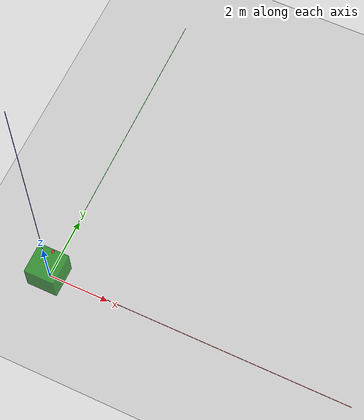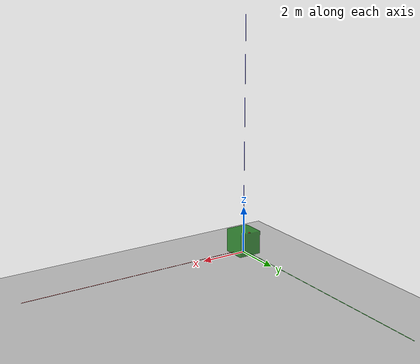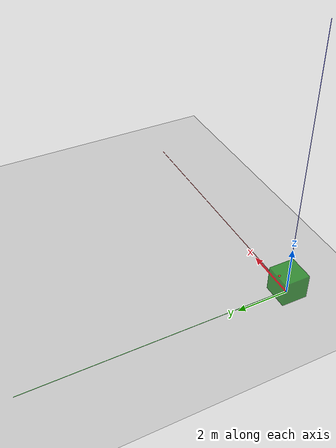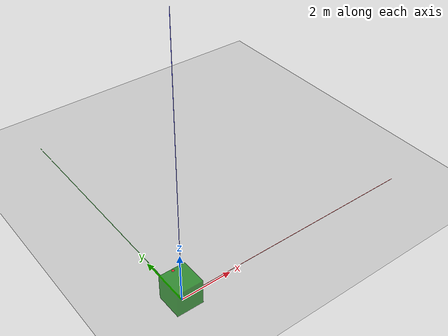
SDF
<?xml version="1.0" ?>
<sdf version="1.9">
  <world name="test_anemometer">
    <physics name="1ms" type="ignored">
      <max_step_size>0.001</max_step_size>
      <real_time_factor>1.0</real_time_factor>
    </physics>

    <plugin filename="gz-sim-physics-system"
        name="gz::sim::systems::Physics">
    </plugin>
    <plugin filename="gz-sim-sensors-system"
        name="gz::sim::systems::Sensors">
      <render_engine>ogre2</render_engine>
      <background_color>0.8 0.8 0.8</background_color>
    </plugin>
    <plugin filename="gz-sim-scene-broadcaster-system"
        name="gz::sim::systems::SceneBroadcaster">
    </plugin>
    <plugin filename="gz-sim-user-commands-system"
        name="gz::sim::systems::UserCommands">
    </plugin>
    <plugin filename="asv_sim2-anemometer-system"
      name="gz::sim::systems::Anemometer">
    </plugin>
    <plugin filename="gz-sim-imu-system"
        name="gz::sim::systems::Imu">
    </plugin>
    <plugin filename="gz-sim-navsat-system"
      name="gz::sim::systems::NavSat">
    </plugin>

    <scene>
      <ambient>1.0 1.0 1.0</ambient>
      <background>0.8 0.8 0.8</background>
      <sky></sky>
    </scene>

    <spherical_coordinates>
      <latitude_deg>-35.363333333</latitude_deg>
      <longitude_deg>149.165222222</longitude_deg>
      <elevation>584</elevation>
      <heading_deg>0</heading_deg>
      <surface_model>EARTH_WGS84</surface_model>
    </spherical_coordinates>

    <light type="directional" name="sun">
      <cast_shadows>true</cast_shadows>
      <pose>0 0 10 0 0 0</pose>
      <diffuse>0.8 0.8 0.8 1</diffuse>
      <specular>0.6 0.6 0.6 1</specular>
      <direction>-0.5 0.1 -0.9</direction>
    </light>

    <!-- Wind directed from the north at 5 m/s -->
    <wind>
      <linear_velocity>0 -5 0</linear_velocity>
    </wind>

    <model name="axes">
      <static>1</static>
      <link name="link">
        <visual name="r">
          <cast_shadows>0</cast_shadows>
          <pose>5 0 0.1 0 0 0</pose>
          <geometry>
            <box>
              <size>10 0.01 0.01</size>
            </box>
          </geometry>
          <material>
            <ambient>1 0 0 0.8</ambient>
            <diffuse>1 0 0 0.8</diffuse>
            <emissive>1 0 0 0.8</emissive>
            <specular>0.5 0.5 0.5 0.8</specular>
          </material>
        </visual>
        <visual name="g">
          <cast_shadows>0</cast_shadows>
          <pose>0 5 0.1 0 0 0</pose>
          <geometry>
            <box>
              <size>0.01 10 0.01</size>
            </box>
          </geometry>
          <material>
            <ambient>0 1 0 0.8</ambient>
            <diffuse>0 1 0 0.8</diffuse>
            <emissive>0 1 0 0.8</emissive>
            <specular>0.5 0.5 0.5 0.8</specular>
          </material>
        </visual>
        <visual name="b">
          <cast_shadows>0</cast_shadows>
          <pose>0 0 5.1 0 0 0</pose>
          <geometry>
            <box>
              <size>0.01 0.01 10</size>
            </box>
          </geometry>
          <material>
            <ambient>0 0 1 0.8</ambient>
            <diffuse>0 0 1 0.8</diffuse>
            <emissive>0 0 1 0.8</emissive>
            <specular>0.5 0.5 0.5 0.8</specular>
          </material>
        </visual>
        <sensor name="navsat_sensor" type="navsat">
          <always_on>1</always_on>
          <update_rate>1</update_rate>
        </sensor>
      </link>
    </model>

    <model name="ground_plane">
      <static>true</static>
      <link name="link">
        <collision name="collision">
          <geometry>
            <plane>
              <normal>0 0 1</normal>
              <size>100 100</size>
            </plane>
          </geometry>
        </collision>
        <visual name="visual">
          <geometry>
            <plane>
              <normal>0 0 1</normal>
              <size>100 100</size>
            </plane>
          </geometry>
          <material>
            <ambient>0.8 0.8 0.8 1</ambient>
            <diffuse>0.8 0.8 0.8 1</diffuse>
            <specular>0.8 0.8 0.8 1</specular>
          </material>
        </visual>
      </link>
    </model>

    <model name="anemometer">
      <pose degrees="true">0 0 0.5 0 0 90</pose>
      <link name="base_link">
        <inertial>
          <mass>10</mass>
          <inertia>
            <ixx>1.6</ixx>
            <ixy>0</ixy>
            <iyy>1.6</iyy>
            <iyz>0</iyz>
            <izz>1.6</izz>
          </inertia>
        </inertial>
        <collision name="collision">
          <geometry>
            <box>
              <size>1 1 1</size>
            </box>
          </geometry>
        </collision>
        <visual name="visual">
          <geometry>
            <box>
              <size>1 1 1</size>
            </box>
          </geometry>
          <material>
            <ambient>0.0 0.5 0.0 0.7</ambient>
            <diffuse>0.0 0.5 0.0 0.7</diffuse>
            <specular>0.1 0.1 0.1 0.7</specular>
          </material>
        </visual>
        <visual name="direction_visual">
          <pose>0.425 0 0.5005 0 0 0</pose>
          <geometry>
            <cylinder>
              <radius>0.05</radius>
              <length>0.001</length>
            </cylinder>
          </geometry>
          <material>
            <ambient>1 0 0 0.7</ambient>
            <diffuse>1 0 0 0.7</diffuse>
            <specular>0.1 0.1 0.1 0.7</specular>
          </material>
        </visual>
      </link>

      <link name='imu_link'>
        <inertial>
          <pose>0 0 0 0 0 0</pose>
          <mass>0.15</mass>
          <inertia>
            <ixx>0.00001</ixx>
            <ixy>0</ixy>
            <ixz>0</ixz>
            <iyy>0.00002</iyy>
            <iyz>0</iyz>
            <izz>0.00002</izz>
          </inertia>
        </inertial>
        <sensor name="imu_sensor" type="imu">
          <pose degrees="true">0 0 0 180 0 0</pose>
          <always_on>1</always_on>
          <update_rate>1000.0</update_rate>
        </sensor>
      </link>
      <joint name='imu_joint' type='revolute'>
        <child>imu_link</child>
        <parent>base_link</parent>
        <axis>
          <xyz>0 0 1</xyz>
          <limit>
            <lower>0</lower>
            <upper>0</upper>
            <effort>0</effort>
            <velocity>0</velocity>
          </limit>
          <dynamics>
            <damping>1.0</damping>
          </dynamics>
        </axis>
      </joint>

      <link name='anemometer_link'>
        <inertial>
          <pose>0 0 0 0 0 0</pose>
          <mass>0.15</mass>
          <inertia>
            <ixx>0.00001</ixx>
            <ixy>0</ixy>
            <ixz>0</ixz>
            <iyy>0.00002</iyy>
            <iyz>0</iyz>
            <izz>0.00002</izz>
          </inertia>
        </inertial>
        <sensor name="anemometer" type="custom" gz:type="anemometer">
          <always_on>1</always_on>
          <update_rate>30</update_rate>
          <gz:anemometer>
            <noise type="gaussian">
              <mean>0.2</mean>
              <stddev>0.1</stddev>
            </noise>
          </gz:anemometer>
        </sensor>
      </link>
      <joint name='anemometer_joint' type='revolute'>
        <child>anemometer_link</child>
        <parent>base_link</parent>
        <axis>
          <xyz>0 0 1</xyz>
          <limit>
            <lower>0</lower>
            <upper>0</upper>
            <effort>0</effort>
            <velocity>0</velocity>
          </limit>
          <dynamics>
            <damping>1.0</damping>
          </dynamics>
        </axis>
      </joint>

      <plugin name="ArduPilotPlugin"
        filename="ArduPilotPlugin">
        <fdm_addr>127.0.0.1</fdm_addr>
        <fdm_port_in>9002</fdm_port_in>
        <connectionTimeoutMaxCount>5</connectionTimeoutMaxCount>
        <lock_step>1</lock_step>
        <no_time_sync>1</no_time_sync>
        <gazeboXYZToNED degrees="true">0 0 0 180 0 90</gazeboXYZToNED>
        <modelXYZToAirplaneXForwardZDown degrees="true">0 0 0 180 0 0</modelXYZToAirplaneXForwardZDown>
        <imuName>imu_link::imu_sensor</imuName>
        <anemometer>anemometer_link::anemometer</anemometer>
      </plugin>

    </model>

  </world>
</sdf>
